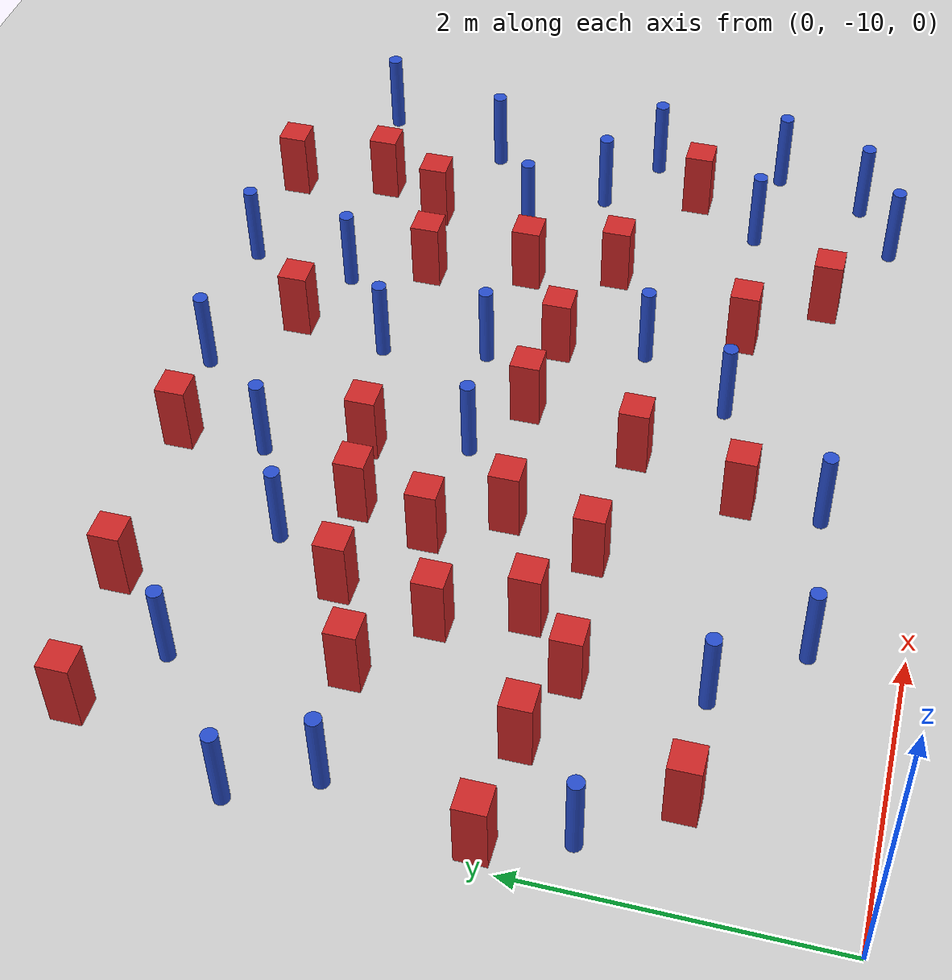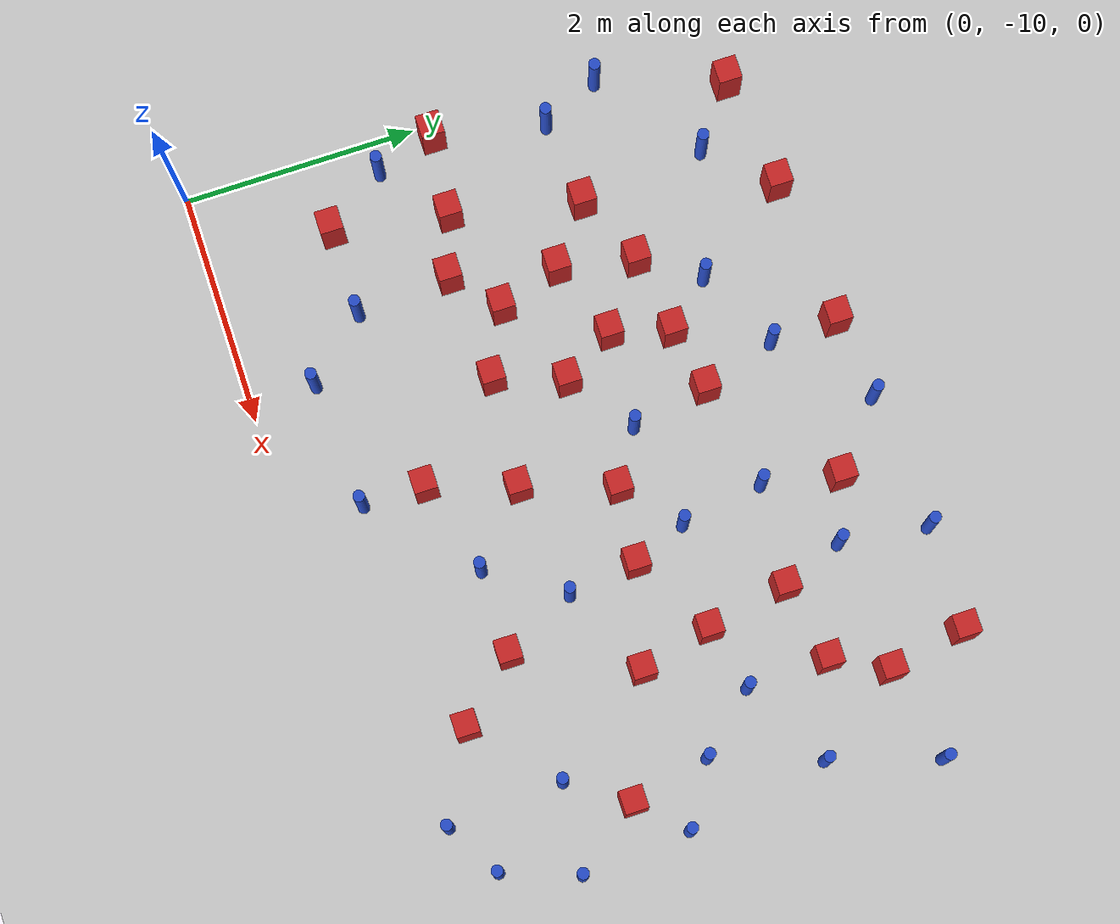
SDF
<sdf version="1.6">
 <world name="default">
  <model name="ground_plane">
   <static>1</static>
   <link name="link">
    <collision name="collision">
     <geometry><plane><normal>0 0 1</normal><size>100 100</size></plane></geometry>
     <surface><friction><ode><mu>100</mu><mu2>50</mu2></ode></friction></surface>
    </collision>
    <visual name="visual">
     <cast_shadows>0</cast_shadows>
     <geometry><plane><normal>0 0 1</normal><size>100 100</size></plane></geometry>
     <material>
      <ambient>1.0 1.0 1.0 1.0</ambient>
      <diffuse>0.8 0.8 0.8 1.0</diffuse>
      <specular>0.01 0.01 0.01 1.000000</specular>
     </material>
    </visual>
   </link>
  </model>
  <model name="pole_obstacle2">
   <static>true</static>
   <pose>1.8859989419 -9.4302232416 2.88873142074e-08 -9.90536690474e-09 4.60219948974e-07 -1.2096599497e-07</pose>
   <link name="link">
    <pose>0 0 0.3 0 -0 0</pose>
    <inertial>
     <mass>1</mass>
     <inertia><ixx>0.145833</ixx><ixy>0</ixy><ixz>0</ixz><iyy>0.145833</iyy><iyz>0</iyz><izz>0.125</izz></inertia>
    </inertial>
    <collision name="collision">
     <geometry><cylinder><radius>0.05</radius><length>.6</length></cylinder></geometry>
    </collision>
    <visual name="visual">
     <geometry><cylinder><radius>0.05</radius><length>.6</length></cylinder></geometry>
     <material>
      <script><name>Gazebo/Blue</name><uri>file://media/materials/scripts/gazebo.material</uri></script>
     </material>
    </visual>
   </link>
  </model>
  <model name="square_post_obstacle2">
   <static>true</static>
   <pose>0.835768978414 -7.92882272635 8.22691968438e-08 7.2212513382e-06 -7.54495500217e-07 2.29674213826e-05</pose>
   <link name="link">
    <pose>0 0 0.25 0 -0 0</pose>
    <inertial>
     <mass>100</mass>
     <inertia>
      <ixx>0.166667</ixx>
      <ixy>0</ixy>
      <ixz>0</ixz>
      <iyy>0.166667</iyy>
      <iyz>0</iyz>
      <izz>0.166667</izz>
     </inertia>
    </inertial>
    <collision name="collision"><geometry><box><size>.2 .2 .5</size></box></geometry></collision>
    <visual name="visual">
     <geometry><box><size>.2 .2 .5</size></box></geometry>
     <material>
      <script><name>Gazebo/Red</name><uri>file://media/materials/scripts/gazebo.material</uri></script>
     </material>
    </visual>
   </link>
  </model>
  <model name="pole_obstacle9">
   <static>true</static>
   <pose>4.58769082749 -4.96081243635 2.88873142074e-08 -9.90536690842e-09 4.60219948965e-07 -1.20965994976e-07</pose>
   <link name="link">
    <pose>0 0 0.3 0 -0 0</pose>
    <inertial>
     <mass>1</mass>
     <inertia><ixx>0.145833</ixx><ixy>0</ixy><ixz>0</ixz><iyy>0.145833</iyy><iyz>0</iyz><izz>0.125</izz></inertia>
    </inertial>
    <collision name="collision">
     <geometry><cylinder><radius>0.05</radius><length>.6</length></cylinder></geometry>
    </collision>
    <visual name="visual">
     <geometry><cylinder><radius>0.05</radius><length>.6</length></cylinder></geometry>
     <material>
      <script><name>Gazebo/Blue</name><uri>file://media/materials/scripts/gazebo.material</uri></script>
     </material>
    </visual>
   </link>
  </model>
  <model name="square_post_obstacle13">
   <static>true</static>
   <pose>0.13644949585 -7.86097893207 8.22691968438e-08 7.2212513382e-06 -7.54495500217e-07 2.29674213826e-05</pose>
   <link name="link">
    <pose>0 0 0.25 0 -0 0</pose>
    <inertial>
     <mass>100</mass>
     <inertia>
      <ixx>0.166667</ixx>
      <ixy>0</ixy>
      <ixz>0</ixz>
      <iyy>0.166667</iyy>
      <iyz>0</iyz>
      <izz>0.166667</izz>
     </inertia>
    </inertial>
    <collision name="collision"><geometry><box><size>.2 .2 .5</size></box></geometry></collision>
    <visual name="visual">
     <geometry><box><size>.2 .2 .5</size></box></geometry>
     <material>
      <script><name>Gazebo/Red</name><uri>file://media/materials/scripts/gazebo.material</uri></script>
     </material>
    </visual>
   </link>
  </model>
  <model name="pole_obstacle22">
   <static>true</static>
   <pose>6.42286496525 -8.55968681063 2.88873142074e-08 -9.9053668967e-09 4.60219948993e-07 -1.20965994957e-07</pose>
   <link name="link">
    <pose>0 0 0.3 0 -0 0</pose>
    <inertial>
     <mass>1</mass>
     <inertia><ixx>0.145833</ixx><ixy>0</ixy><ixz>0</ixz><iyy>0.145833</iyy><iyz>0</iyz><izz>0.125</izz></inertia>
    </inertial>
    <collision name="collision">
     <geometry><cylinder><radius>0.05</radius><length>.6</length></cylinder></geometry>
    </collision>
    <visual name="visual">
     <geometry><cylinder><radius>0.05</radius><length>.6</length></cylinder></geometry>
     <material>
      <script><name>Gazebo/Blue</name><uri>file://media/materials/scripts/gazebo.material</uri></script>
     </material>
    </visual>
   </link>
  </model>
  <model name="square_post_obstacle18">
   <static>true</static>
   <pose>2.69418516089 -5.13461668577 8.22691968438e-08 7.2212513382e-06 -7.54495500217e-07 2.29674213826e-05</pose>
   <link name="link">
    <pose>0 0 0.25 0 -0 0</pose>
    <inertial>
     <mass>100</mass>
     <inertia>
      <ixx>0.166667</ixx>
      <ixy>0</ixy>
      <ixz>0</ixz>
      <iyy>0.166667</iyy>
      <iyz>0</iyz>
      <izz>0.166667</izz>
     </inertia>
    </inertial>
    <collision name="collision"><geometry><box><size>.2 .2 .5</size></box></geometry></collision>
    <visual name="visual">
     <geometry><box><size>.2 .2 .5</size></box></geometry>
     <material>
      <script><name>Gazebo/Red</name><uri>file://media/materials/scripts/gazebo.material</uri></script>
     </material>
    </visual>
   </link>
  </model>
  <model name="pole_obstacle32">
   <static>true</static>
   <pose>1.41220477275 -8.90827783609 2.88873142074e-08 -9.90536690474e-09 4.60219948974e-07 -1.2096599497e-07</pose>
   <link name="link">
    <pose>0 0 0.3 0 -0 0</pose>
    <inertial>
     <mass>1</mass>
     <inertia><ixx>0.145833</ixx><ixy>0</ixy><ixz>0</ixz><iyy>0.145833</iyy><iyz>0</iyz><izz>0.125</izz></inertia>
    </inertial>
    <collision name="collision">
     <geometry><cylinder><radius>0.05</radius><length>.6</length></cylinder></geometry>
    </collision>
    <visual name="visual">
     <geometry><cylinder><radius>0.05</radius><length>.6</length></cylinder></geometry>
     <material>
      <script><name>Gazebo/Blue</name><uri>file://media/materials/scripts/gazebo.material</uri></script>
     </material>
    </visual>
   </link>
  </model>
  <model name="pole_obstacle34">
   <static>true</static>
   <pose>3.82896384521 -6.16896124586 2.88873142074e-08 -9.90536689859e-09 4.60219948989e-07 -1.20965994961e-07</pose>
   <link name="link">
    <pose>0 0 0.3 0 -0 0</pose>
    <inertial>
     <mass>1</mass>
     <inertia><ixx>0.145833</ixx><ixy>0</ixy><ixz>0</ixz><iyy>0.145833</iyy><iyz>0</iyz><izz>0.125</izz></inertia>
    </inertial>
    <collision name="collision">
     <geometry><cylinder><radius>0.05</radius><length>.6</length></cylinder></geometry>
    </collision>
    <visual name="visual">
     <geometry><cylinder><radius>0.05</radius><length>.6</length></cylinder></geometry>
     <material>
      <script><name>Gazebo/Blue</name><uri>file://media/materials/scripts/gazebo.material</uri></script>
     </material>
    </visual>
   </link>
  </model>
  <model name="square_post_obstacle30">
   <static>true</static>
   <pose>4.9848626262 -7.58560428557 8.22691968438e-08 7.22125133819e-06 -7.54495500217e-07 2.29674213826e-05</pose>
   <link name="link">
    <pose>0 0 0.25 0 -0 0</pose>
    <inertial>
     <mass>100</mass>
     <inertia>
      <ixx>0.166667</ixx>
      <ixy>0</ixy>
      <ixz>0</ixz>
      <iyy>0.166667</iyy>
      <iyz>0</iyz>
      <izz>0.166667</izz>
     </inertia>
    </inertial>
    <collision name="collision"><geometry><box><size>.2 .2 .5</size></box></geometry></collision>
    <visual name="visual">
     <geometry><box><size>.2 .2 .5</size></box></geometry>
     <material>
      <script><name>Gazebo/Red</name><uri>file://media/materials/scripts/gazebo.material</uri></script>
     </material>
    </visual>
   </link>
  </model>
  <model name="pole_obstacle46">
   <static>true</static>
   <pose>2.01112442423 -6.05994592885 2.88873142074e-08 -9.90536689932e-09 4.60219948987e-07 -1.20965994962e-07</pose>
   <link name="link">
    <pose>0 0 0.3 0 -0 0</pose>
    <inertial>
     <mass>1</mass>
     <inertia><ixx>0.145833</ixx><ixy>0</ixy><ixz>0</ixz><iyy>0.145833</iyy><iyz>0</iyz><izz>0.125</izz></inertia>
    </inertial>
    <collision name="collision">
     <geometry><cylinder><radius>0.05</radius><length>.6</length></cylinder></geometry>
    </collision>
    <visual name="visual">
     <geometry><cylinder><radius>0.05</radius><length>.6</length></cylinder></geometry>
     <material>
      <script><name>Gazebo/Blue</name><uri>file://media/materials/scripts/gazebo.material</uri></script>
     </material>
    </visual>
   </link>
  </model>
  <model name="pole_obstacle47">
   <static>true</static>
   <pose>5.65689835714 -8.48321922758 2.88873142074e-08 -9.9053668967e-09 4.60219948993e-07 -1.20965994957e-07</pose>
   <link name="link">
    <pose>0 0 0.3 0 -0 0</pose>
    <inertial>
     <mass>1</mass>
     <inertia><ixx>0.145833</ixx><ixy>0</ixy><ixz>0</ixz><iyy>0.145833</iyy><iyz>0</iyz><izz>0.125</izz></inertia>
    </inertial>
    <collision name="collision">
     <geometry><cylinder><radius>0.05</radius><length>.6</length></cylinder></geometry>
    </collision>
    <visual name="visual">
     <geometry><cylinder><radius>0.05</radius><length>.6</length></cylinder></geometry>
     <material>
      <script><name>Gazebo/Blue</name><uri>file://media/materials/scripts/gazebo.material</uri></script>
     </material>
    </visual>
   </link>
  </model>
  <model name="pole_obstacle51">
   <static>true</static>
   <pose>2.97952975803 -9.35421330922 2.88873142074e-08 -9.90536692318e-09 4.6021994893e-07 -1.20965994988e-07</pose>
   <link name="link">
    <pose>0 0 0.3 0 -0 0</pose>
    <inertial>
     <mass>1</mass>
     <inertia><ixx>0.145833</ixx><ixy>0</ixy><ixz>0</ixz><iyy>0.145833</iyy><iyz>0</iyz><izz>0.125</izz></inertia>
    </inertial>
    <collision name="collision">
     <geometry><cylinder><radius>0.05</radius><length>.6</length></cylinder></geometry>
    </collision>
    <visual name="visual">
     <geometry><cylinder><radius>0.05</radius><length>.6</length></cylinder></geometry>
     <material>
      <script><name>Gazebo/Blue</name><uri>file://media/materials/scripts/gazebo.material</uri></script>
     </material>
    </visual>
   </link>
  </model>
  <model name="square_post_obstacle41">
   <static>true</static>
   <pose>4.69318071268 -6.25498221422 8.22691968438e-08 7.2212513382e-06 -7.54495500217e-07 2.29674213826e-05</pose>
   <link name="link">
    <pose>0 0 0.25 0 -0 0</pose>
    <inertial>
     <mass>100</mass>
     <inertia>
      <ixx>0.166667</ixx>
      <ixy>0</ixy>
      <ixz>0</ixz>
      <iyy>0.166667</iyy>
      <iyz>0</iyz>
      <izz>0.166667</izz>
     </inertia>
    </inertial>
    <collision name="collision"><geometry><box><size>.2 .2 .5</size></box></geometry></collision>
    <visual name="visual">
     <geometry><box><size>.2 .2 .5</size></box></geometry>
     <material>
      <script><name>Gazebo/Red</name><uri>file://media/materials/scripts/gazebo.material</uri></script>
     </material>
    </visual>
   </link>
  </model>
  <model name="square_post_obstacle47">
   <static>true</static>
   <pose>5.98729697557 -7.99261008761 8.22691968438e-08 7.2212513382e-06 -7.54495500217e-07 2.29674213826e-05</pose>
   <link name="link">
    <pose>0 0 0.25 0 -0 0</pose>
    <inertial>
     <mass>100</mass>
     <inertia>
      <ixx>0.166667</ixx>
      <ixy>0</ixy>
      <ixz>0</ixz>
      <iyy>0.166667</iyy>
      <iyz>0</iyz>
      <izz>0.166667</izz>
     </inertia>
    </inertial>
    <collision name="collision"><geometry><box><size>.2 .2 .5</size></box></geometry></collision>
    <visual name="visual">
     <geometry><box><size>.2 .2 .5</size></box></geometry>
     <material>
      <script><name>Gazebo/Red</name><uri>file://media/materials/scripts/gazebo.material</uri></script>
     </material>
    </visual>
   </link>
  </model>
  <model name="square_post_obstacle48">
   <static>true</static>
   <pose>2.29051355071 -8.01106818688 8.22691968438e-08 7.2212513382e-06 -7.54495500217e-07 2.29674213826e-05</pose>
   <link name="link">
    <pose>0 0 0.25 0 -0 0</pose>
    <inertial>
     <mass>100</mass>
     <inertia>
      <ixx>0.166667</ixx>
      <ixy>0</ixy>
      <ixz>0</ixz>
      <iyy>0.166667</iyy>
      <iyz>0</iyz>
      <izz>0.166667</izz>
     </inertia>
    </inertial>
    <collision name="collision"><geometry><box><size>.2 .2 .5</size></box></geometry></collision>
    <visual name="visual">
     <geometry><box><size>.2 .2 .5</size></box></geometry>
     <material>
      <script><name>Gazebo/Red</name><uri>file://media/materials/scripts/gazebo.material</uri></script>
     </material>
    </visual>
   </link>
  </model>
  <model name="square_post_obstacle49">
   <static>true</static>
   <pose>2.49766347501 -7.42223464471 8.22691968438e-08 7.22125133819e-06 -7.54495500217e-07 2.29674213826e-05</pose>
   <link name="link">
    <pose>0 0 0.25 0 -0 0</pose>
    <inertial>
     <mass>100</mass>
     <inertia>
      <ixx>0.166667</ixx>
      <ixy>0</ixy>
      <ixz>0</ixz>
      <iyy>0.166667</iyy>
      <iyz>0</iyz>
      <izz>0.166667</izz>
     </inertia>
    </inertial>
    <collision name="collision"><geometry><box><size>.2 .2 .5</size></box></geometry></collision>
    <visual name="visual">
     <geometry><box><size>.2 .2 .5</size></box></geometry>
     <material>
      <script><name>Gazebo/Red</name><uri>file://media/materials/scripts/gazebo.material</uri></script>
     </material>
    </visual>
   </link>
  </model>
  <model name="square_post_obstacle53">
   <static>true</static>
   <pose>5.60445173932 -5.65862846128 8.22691968438e-08 7.2212513382e-06 -7.54495500217e-07 2.29674213826e-05</pose>
   <link name="link">
    <pose>0 0 0.25 0 -0 0</pose>
    <inertial>
     <mass>100</mass>
     <inertia>
      <ixx>0.166667</ixx>
      <ixy>0</ixy>
      <ixz>0</ixz>
      <iyy>0.166667</iyy>
      <iyz>0</iyz>
      <izz>0.166667</izz>
     </inertia>
    </inertial>
    <collision name="collision"><geometry><box><size>.2 .2 .5</size></box></geometry></collision>
    <visual name="visual">
     <geometry><box><size>.2 .2 .5</size></box></geometry>
     <material>
      <script><name>Gazebo/Red</name><uri>file://media/materials/scripts/gazebo.material</uri></script>
     </material>
    </visual>
   </link>
  </model>
  <model name="square_post_obstacle54">
   <static>true</static>
   <pose>3.95697794749 -5.52259755538 8.22691968438e-08 7.2212513382e-06 -7.54495500217e-07 2.29674213826e-05</pose>
   <link name="link">
    <pose>0 0 0.25 0 -0 0</pose>
    <inertial>
     <mass>100</mass>
     <inertia>
      <ixx>0.166667</ixx>
      <ixy>0</ixy>
      <ixz>0</ixz>
      <iyy>0.166667</iyy>
      <iyz>0</iyz>
      <izz>0.166667</izz>
     </inertia>
    </inertial>
    <collision name="collision"><geometry><box><size>.2 .2 .5</size></box></geometry></collision>
    <visual name="visual">
     <geometry><box><size>.2 .2 .5</size></box></geometry>
     <material>
      <script><name>Gazebo/Red</name><uri>file://media/materials/scripts/gazebo.material</uri></script>
     </material>
    </visual>
   </link>
  </model>
  <model name="square_post_obstacle60">
   <static>true</static>
   <pose>1.73752317292 -7.75139012081 8.22691968438e-08 7.2212513382e-06 -7.54495500217e-07 2.29674213826e-05</pose>
   <link name="link">
    <pose>0 0 0.25 0 -0 0</pose>
    <inertial>
     <mass>100</mass>
     <inertia>
      <ixx>0.166667</ixx>
      <ixy>0</ixy>
      <ixz>0</ixz>
      <iyy>0.166667</iyy>
      <iyz>0</iyz>
      <izz>0.166667</izz>
     </inertia>
    </inertial>
    <collision name="collision"><geometry><box><size>.2 .2 .5</size></box></geometry></collision>
    <visual name="visual">
     <geometry><box><size>.2 .2 .5</size></box></geometry>
     <material>
      <script><name>Gazebo/Red</name><uri>file://media/materials/scripts/gazebo.material</uri></script>
     </material>
    </visual>
   </link>
  </model>
  <model name="square_post_obstacle68">
   <static>true</static>
   <pose>0.451671294636 -5.34658785301 8.22691968438e-08 7.2212513382e-06 -7.54495500217e-07 2.29674213826e-05</pose>
   <link name="link">
    <pose>0 0 0.25 0 -0 0</pose>
    <inertial>
     <mass>100</mass>
     <inertia>
      <ixx>0.166667</ixx>
      <ixy>0</ixy>
      <ixz>0</ixz>
      <iyy>0.166667</iyy>
      <iyz>0</iyz>
      <izz>0.166667</izz>
     </inertia>
    </inertial>
    <collision name="collision"><geometry><box><size>.2 .2 .5</size></box></geometry></collision>
    <visual name="visual">
     <geometry><box><size>.2 .2 .5</size></box></geometry>
     <material>
      <script><name>Gazebo/Red</name><uri>file://media/materials/scripts/gazebo.material</uri></script>
     </material>
    </visual>
   </link>
  </model>
  <model name="square_post_obstacle80">
   <static>true</static>
   <pose>1.43315822951 -5.22677579761 8.22691968438e-08 7.2212513382e-06 -7.54495500217e-07 2.29674213826e-05</pose>
   <link name="link">
    <pose>0 0 0.25 0 -0 0</pose>
    <inertial>
     <mass>100</mass>
     <inertia>
      <ixx>0.166667</ixx>
      <ixy>0</ixy>
      <ixz>0</ixz>
      <iyy>0.166667</iyy>
      <iyz>0</iyz>
      <izz>0.166667</izz>
     </inertia>
    </inertial>
    <collision name="collision"><geometry><box><size>.2 .2 .5</size></box></geometry></collision>
    <visual name="visual">
     <geometry><box><size>.2 .2 .5</size></box></geometry>
     <material>
      <script><name>Gazebo/Red</name><uri>file://media/materials/scripts/gazebo.material</uri></script>
     </material>
    </visual>
   </link>
  </model>
  <model name="square_post_obstacle86">
   <static>true</static>
   <pose>1.07769058998 -6.83067623101 8.22691968438e-08 7.22125133819e-06 -7.54495500217e-07 2.29674213826e-05</pose>
   <link name="link">
    <pose>0 0 0.25 0 -0 0</pose>
    <inertial>
     <mass>100</mass>
     <inertia>
      <ixx>0.166667</ixx>
      <ixy>0</ixy>
      <ixz>0</ixz>
      <iyy>0.166667</iyy>
      <iyz>0</iyz>
      <izz>0.166667</izz>
     </inertia>
    </inertial>
    <collision name="collision"><geometry><box><size>.2 .2 .5</size></box></geometry></collision>
    <visual name="visual">
     <geometry><box><size>.2 .2 .5</size></box></geometry>
     <material>
      <script><name>Gazebo/Red</name><uri>file://media/materials/scripts/gazebo.material</uri></script>
     </material>
    </visual>
   </link>
  </model>
  <model name="pole_obstacle95">
   <static>true</static>
   <pose>0.95234427532 -5.73133498466 2.88873142074e-08 -9.90536689421e-09 4.60219948999e-07 -1.20965994953e-07</pose>
   <link name="link">
    <pose>0 0 0.3 0 -0 0</pose>
    <inertial>
     <mass>1</mass>
     <inertia><ixx>0.145833</ixx><ixy>0</ixy><ixz>0</ixz><iyy>0.145833</iyy><iyz>0</iyz><izz>0.125</izz></inertia>
    </inertial>
    <collision name="collision">
     <geometry><cylinder><radius>0.05</radius><length>.6</length></cylinder></geometry>
    </collision>
    <visual name="visual">
     <geometry><cylinder><radius>0.05</radius><length>.6</length></cylinder></geometry>
     <material>
      <script><name>Gazebo/Blue</name><uri>file://media/materials/scripts/gazebo.material</uri></script>
     </material>
    </visual>
   </link>
  </model>
  <model name="square_post_obstacle91">
   <static>true</static>
   <pose>2.22246800475 -6.96604614455 8.22691968438e-08 7.2212513382e-06 -7.54495500217e-07 2.29674213826e-05</pose>
   <link name="link">
    <pose>0 0 0.25 0 -0 0</pose>
    <inertial>
     <mass>100</mass>
     <inertia>
      <ixx>0.166667</ixx>
      <ixy>0</ixy>
      <ixz>0</ixz>
      <iyy>0.166667</iyy>
      <iyz>0</iyz>
      <izz>0.166667</izz>
     </inertia>
    </inertial>
    <collision name="collision"><geometry><box><size>.2 .2 .5</size></box></geometry></collision>
    <visual name="visual">
     <geometry><box><size>.2 .2 .5</size></box></geometry>
     <material>
      <script><name>Gazebo/Red</name><uri>file://media/materials/scripts/gazebo.material</uri></script>
     </material>
    </visual>
   </link>
  </model>
  <model name="square_post_obstacle94">
   <static>true</static>
   <pose>3.23444855849 -8.08561585137 8.22691968438e-08 7.2212513382e-06 -7.54495500217e-07 2.29674213826e-05</pose>
   <link name="link">
    <pose>0 0 0.25 0 -0 0</pose>
    <inertial>
     <mass>100</mass>
     <inertia>
      <ixx>0.166667</ixx>
      <ixy>0</ixy>
      <ixz>0</ixz>
      <iyy>0.166667</iyy>
      <iyz>0</iyz>
      <izz>0.166667</izz>
     </inertia>
    </inertial>
    <collision name="collision"><geometry><box><size>.2 .2 .5</size></box></geometry></collision>
    <visual name="visual">
     <geometry><box><size>.2 .2 .5</size></box></geometry>
     <material>
      <script><name>Gazebo/Red</name><uri>file://media/materials/scripts/gazebo.material</uri></script>
     </material>
    </visual>
   </link>
  </model>
  <model name="square_post_obstacle96">
   <static>true</static>
   <pose>4.99157654891 -9.09134692504 8.22691968438e-08 7.22125133819e-06 -7.54495500217e-07 2.29674213826e-05</pose>
   <link name="link">
    <pose>0 0 0.25 0 -0 0</pose>
    <inertial>
     <mass>100</mass>
     <inertia>
      <ixx>0.166667</ixx>
      <ixy>0</ixy>
      <ixz>0</ixz>
      <iyy>0.166667</iyy>
      <iyz>0</iyz>
      <izz>0.166667</izz>
     </inertia>
    </inertial>
    <collision name="collision"><geometry><box><size>.2 .2 .5</size></box></geometry></collision>
    <visual name="visual">
     <geometry><box><size>.2 .2 .5</size></box></geometry>
     <material>
      <script><name>Gazebo/Red</name><uri>file://media/materials/scripts/gazebo.material</uri></script>
     </material>
    </visual>
   </link>
  </model>
  <model name="pole_obstacle103">
   <static>true</static>
   <pose>3.41333436719 -5.04303999115 2.88873142074e-08 -9.90536689859e-09 4.60219948989e-07 -1.20965994961e-07</pose>
   <link name="link">
    <pose>0 0 0.3 0 -0 0</pose>
    <inertial>
     <mass>1</mass>
     <inertia><ixx>0.145833</ixx><ixy>0</ixy><ixz>0</ixz><iyy>0.145833</iyy><iyz>0</iyz><izz>0.125</izz></inertia>
    </inertial>
    <collision name="collision">
     <geometry><cylinder><radius>0.05</radius><length>.6</length></cylinder></geometry>
    </collision>
    <visual name="visual">
     <geometry><cylinder><radius>0.05</radius><length>.6</length></cylinder></geometry>
     <material>
      <script><name>Gazebo/Blue</name><uri>file://media/materials/scripts/gazebo.material</uri></script>
     </material>
    </visual>
   </link>
  </model>
  <model name="square_post_obstacle101">
   <static>true</static>
   <pose>4.13178375362 -7.35766125523 8.22691968438e-08 7.22125133819e-06 -7.54495500217e-07 2.29674213826e-05</pose>
   <link name="link">
    <pose>0 0 0.25 0 -0 0</pose>
    <inertial>
     <mass>100</mass>
     <inertia>
      <ixx>0.166667</ixx>
      <ixy>0</ixy>
      <ixz>0</ixz>
      <iyy>0.166667</iyy>
      <iyz>0</iyz>
      <izz>0.166667</izz>
     </inertia>
    </inertial>
    <collision name="collision"><geometry><box><size>.2 .2 .5</size></box></geometry></collision>
    <visual name="visual">
     <geometry><box><size>.2 .2 .5</size></box></geometry>
     <material>
      <script><name>Gazebo/Red</name><uri>file://media/materials/scripts/gazebo.material</uri></script>
     </material>
    </visual>
   </link>
  </model>
  <model name="pole_obstacle114">
   <static>true</static>
   <pose>5.8348033945 -7.30347017115 2.88873142074e-08 -9.90536690842e-09 4.60219948965e-07 -1.20965994976e-07</pose>
   <link name="link">
    <pose>0 0 0.3 0 -0 0</pose>
    <inertial>
     <mass>1</mass>
     <inertia><ixx>0.145833</ixx><ixy>0</ixy><ixz>0</ixz><iyy>0.145833</iyy><iyz>0</iyz><izz>0.125</izz></inertia>
    </inertial>
    <collision name="collision">
     <geometry><cylinder><radius>0.05</radius><length>.6</length></cylinder></geometry>
    </collision>
    <visual name="visual">
     <geometry><cylinder><radius>0.05</radius><length>.6</length></cylinder></geometry>
     <material>
      <script><name>Gazebo/Blue</name><uri>file://media/materials/scripts/gazebo.material</uri></script>
     </material>
    </visual>
   </link>
  </model>
  <model name="pole_obstacle116">
   <static>true</static>
   <pose>0.334454652385 -6.90855166016 2.88873142074e-08 -9.90536689683e-09 4.60219948993e-07 -1.20965994957e-07</pose>
   <link name="link">
    <pose>0 0 0.3 0 -0 0</pose>
    <inertial>
     <mass>1</mass>
     <inertia><ixx>0.145833</ixx><ixy>0</ixy><ixz>0</ixz><iyy>0.145833</iyy><iyz>0</iyz><izz>0.125</izz></inertia>
    </inertial>
    <collision name="collision">
     <geometry><cylinder><radius>0.05</radius><length>.6</length></cylinder></geometry>
    </collision>
    <visual name="visual">
     <geometry><cylinder><radius>0.05</radius><length>.6</length></cylinder></geometry>
     <material>
      <script><name>Gazebo/Blue</name><uri>file://media/materials/scripts/gazebo.material</uri></script>
     </material>
    </visual>
   </link>
  </model>
  <model name="pole_obstacle119">
   <static>true</static>
   <pose>6.15157450512 -6.39888402472 2.88873142074e-08 -9.90536690842e-09 4.60219948965e-07 -1.20965994976e-07</pose>
   <link name="link">
    <pose>0 0 0.3 0 -0 0</pose>
    <inertial>
     <mass>1</mass>
     <inertia><ixx>0.145833</ixx><ixy>0</ixy><ixz>0</ixz><iyy>0.145833</iyy><iyz>0</iyz><izz>0.125</izz></inertia>
    </inertial>
    <collision name="collision">
     <geometry><cylinder><radius>0.05</radius><length>.6</length></cylinder></geometry>
    </collision>
    <visual name="visual">
     <geometry><cylinder><radius>0.05</radius><length>.6</length></cylinder></geometry>
     <material>
      <script><name>Gazebo/Blue</name><uri>file://media/materials/scripts/gazebo.material</uri></script>
     </material>
    </visual>
   </link>
  </model>
  <model name="pole_obstacle120">
   <static>true</static>
   <pose>0.0958705696128 -6.40343346842 2.88873142074e-08 -9.90536689742e-09 4.60219948992e-07 -1.2096599496e-07</pose>
   <link name="link">
    <pose>0 0 0.3 0 -0 0</pose>
    <inertial>
     <mass>1</mass>
     <inertia><ixx>0.145833</ixx><ixy>0</ixy><ixz>0</ixz><iyy>0.145833</iyy><iyz>0</iyz><izz>0.125</izz></inertia>
    </inertial>
    <collision name="collision">
     <geometry><cylinder><radius>0.05</radius><length>.6</length></cylinder></geometry>
    </collision>
    <visual name="visual">
     <geometry><cylinder><radius>0.05</radius><length>.6</length></cylinder></geometry>
     <material>
      <script><name>Gazebo/Blue</name><uri>file://media/materials/scripts/gazebo.material</uri></script>
     </material>
    </visual>
   </link>
  </model>
  <model name="pole_obstacle121">
   <static>true</static>
   <pose>2.70878398709 -5.700356807 2.88873142074e-08 -9.90536689859e-09 4.60219948989e-07 -1.20965994961e-07</pose>
   <link name="link">
    <pose>0 0 0.3 0 -0 0</pose>
    <inertial>
     <mass>1</mass>
     <inertia><ixx>0.145833</ixx><ixy>0</ixy><ixz>0</ixz><iyy>0.145833</iyy><iyz>0</iyz><izz>0.125</izz></inertia>
    </inertial>
    <collision name="collision">
     <geometry><cylinder><radius>0.05</radius><length>.6</length></cylinder></geometry>
    </collision>
    <visual name="visual">
     <geometry><cylinder><radius>0.05</radius><length>.6</length></cylinder></geometry>
     <material>
      <script><name>Gazebo/Blue</name><uri>file://media/materials/scripts/gazebo.material</uri></script>
     </material>
    </visual>
   </link>
  </model>
  <model name="square_post_obstacle128">
   <static>true</static>
   <pose>1.35397711601 -8.09190194919 8.22691968438e-08 7.22125133819e-06 -7.54495500217e-07 2.29674213826e-05</pose>
   <link name="link">
    <pose>0 0 0.25 0 -0 0</pose>
    <inertial>
     <mass>100</mass>
     <inertia>
      <ixx>0.166667</ixx>
      <ixy>0</ixy>
      <ixz>0</ixz>
      <iyy>0.166667</iyy>
      <iyz>0</iyz>
      <izz>0.166667</izz>
     </inertia>
    </inertial>
    <collision name="collision"><geometry><box><size>.2 .2 .5</size></box></geometry></collision>
    <visual name="visual">
     <geometry><box><size>.2 .2 .5</size></box></geometry>
     <material>
      <script><name>Gazebo/Red</name><uri>file://media/materials/scripts/gazebo.material</uri></script>
     </material>
    </visual>
   </link>
  </model>
  <model name="pole_obstacle146">
   <static>true</static>
   <pose>3.04067337786 -7.01361680601 2.88873142074e-08 -9.90536689859e-09 4.60219948989e-07 -1.20965994961e-07</pose>
   <link name="link">
    <pose>0 0 0.3 0 -0 0</pose>
    <inertial>
     <mass>1</mass>
     <inertia><ixx>0.145833</ixx><ixy>0</ixy><ixz>0</ixz><iyy>0.145833</iyy><iyz>0</iyz><izz>0.125</izz></inertia>
    </inertial>
    <collision name="collision">
     <geometry><cylinder><radius>0.05</radius><length>.6</length></cylinder></geometry>
    </collision>
    <visual name="visual">
     <geometry><cylinder><radius>0.05</radius><length>.6</length></cylinder></geometry>
     <material>
      <script><name>Gazebo/Blue</name><uri>file://media/materials/scripts/gazebo.material</uri></script>
     </material>
    </visual>
   </link>
  </model>
  <model name="pole_obstacle148">
   <static>true</static>
   <pose>6.43242458367 -5.47777647388 2.88873142074e-08 -9.90536690842e-09 4.60219948965e-07 -1.20965994976e-07</pose>
   <link name="link">
    <pose>0 0 0.3 0 -0 0</pose>
    <inertial>
     <mass>1</mass>
     <inertia><ixx>0.145833</ixx><ixy>0</ixy><ixz>0</ixz><iyy>0.145833</iyy><iyz>0</iyz><izz>0.125</izz></inertia>
    </inertial>
    <collision name="collision">
     <geometry><cylinder><radius>0.05</radius><length>.6</length></cylinder></geometry>
    </collision>
    <visual name="visual">
     <geometry><cylinder><radius>0.05</radius><length>.6</length></cylinder></geometry>
     <material>
      <script><name>Gazebo/Blue</name><uri>file://media/materials/scripts/gazebo.material</uri></script>
     </material>
    </visual>
   </link>
  </model>
  <model name="square_post_obstacle142">
   <static>true</static>
   <pose>2.98983944252 -8.81898818358 8.22691968438e-08 7.22125133819e-06 -7.54495500217e-07 2.29674213826e-05</pose>
   <link name="link">
    <pose>0 0 0.25 0 -0 0</pose>
    <inertial>
     <mass>100</mass>
     <inertia>
      <ixx>0.166667</ixx>
      <ixy>0</ixy>
      <ixz>0</ixz>
      <iyy>0.166667</iyy>
      <iyz>0</iyz>
      <izz>0.166667</izz>
     </inertia>
    </inertial>
    <collision name="collision"><geometry><box><size>.2 .2 .5</size></box></geometry></collision>
    <visual name="visual">
     <geometry><box><size>.2 .2 .5</size></box></geometry>
     <material>
      <script><name>Gazebo/Red</name><uri>file://media/materials/scripts/gazebo.material</uri></script>
     </material>
    </visual>
   </link>
  </model>
  <model name="pole_obstacle152">
   <static>true</static>
   <pose>4.49245693471 -5.71729059216 2.88873142074e-08 -9.90536690842e-09 4.60219948965e-07 -1.20965994976e-07</pose>
   <link name="link">
    <pose>0 0 0.3 0 -0 0</pose>
    <inertial>
     <mass>1</mass>
     <inertia><ixx>0.145833</ixx><ixy>0</ixy><ixz>0</ixz><iyy>0.145833</iyy><iyz>0</iyz><izz>0.125</izz></inertia>
    </inertial>
    <collision name="collision">
     <geometry><cylinder><radius>0.05</radius><length>.6</length></cylinder></geometry>
    </collision>
    <visual name="visual">
     <geometry><cylinder><radius>0.05</radius><length>.6</length></cylinder></geometry>
     <material>
      <script><name>Gazebo/Blue</name><uri>file://media/materials/scripts/gazebo.material</uri></script>
     </material>
    </visual>
   </link>
  </model>
  <model name="square_post_obstacle150">
   <static>true</static>
   <pose>0.666853940541 -8.9080145905 8.22691968438e-08 7.22125133819e-06 -7.54495500217e-07 2.29674213826e-05</pose>
   <link name="link">
    <pose>0 0 0.25 0 -0 0</pose>
    <inertial>
     <mass>100</mass>
     <inertia>
      <ixx>0.166667</ixx>
      <ixy>0</ixy>
      <ixz>0</ixz>
      <iyy>0.166667</iyy>
      <iyz>0</iyz>
      <izz>0.166667</izz>
     </inertia>
    </inertial>
    <collision name="collision"><geometry><box><size>.2 .2 .5</size></box></geometry></collision>
    <visual name="visual">
     <geometry><box><size>.2 .2 .5</size></box></geometry>
     <material>
      <script><name>Gazebo/Red</name><uri>file://media/materials/scripts/gazebo.material</uri></script>
     </material>
    </visual>
   </link>
  </model>
  <model name="pole_obstacle161">
   <static>true</static>
   <pose>4.21671271978 -7.95567261143 2.88873142074e-08 -9.90536690264e-09 4.60219948979e-07 -1.20965994965e-07</pose>
   <link name="link">
    <pose>0 0 0.3 0 -0 0</pose>
    <inertial>
     <mass>1</mass>
     <inertia><ixx>0.145833</ixx><ixy>0</ixy><ixz>0</ixz><iyy>0.145833</iyy><iyz>0</iyz><izz>0.125</izz></inertia>
    </inertial>
    <collision name="collision">
     <geometry><cylinder><radius>0.05</radius><length>.6</length></cylinder></geometry>
    </collision>
    <visual name="visual">
     <geometry><cylinder><radius>0.05</radius><length>.6</length></cylinder></geometry>
     <material>
      <script><name>Gazebo/Blue</name><uri>file://media/materials/scripts/gazebo.material</uri></script>
     </material>
    </visual>
   </link>
  </model>
  <model name="pole_obstacle164">
   <static>true</static>
   <pose>3.94726783071 -6.88765625675 2.88873142074e-08 -9.90536689859e-09 4.60219948989e-07 -1.20965994961e-07</pose>
   <link name="link">
    <pose>0 0 0.3 0 -0 0</pose>
    <inertial>
     <mass>1</mass>
     <inertia><ixx>0.145833</ixx><ixy>0</ixy><ixz>0</ixz><iyy>0.145833</iyy><iyz>0</iyz><izz>0.125</izz></inertia>
    </inertial>
    <collision name="collision">
     <geometry><cylinder><radius>0.05</radius><length>.6</length></cylinder></geometry>
    </collision>
    <visual name="visual">
     <geometry><cylinder><radius>0.05</radius><length>.6</length></cylinder></geometry>
     <material>
      <script><name>Gazebo/Blue</name><uri>file://media/materials/scripts/gazebo.material</uri></script>
     </material>
    </visual>
   </link>
  </model>
  <model name="square_post_obstacle159">
   <static>true</static>
   <pose>3.49153956252 -7.29890074141 8.22691968438e-08 7.2212513382e-06 -7.54495500217e-07 2.29674213826e-05</pose>
   <link name="link">
    <pose>0 0 0.25 0 -0 0</pose>
    <inertial>
     <mass>100</mass>
     <inertia>
      <ixx>0.166667</ixx>
      <ixy>0</ixy>
      <ixz>0</ixz>
      <iyy>0.166667</iyy>
      <iyz>0</iyz>
      <izz>0.166667</izz>
     </inertia>
    </inertial>
    <collision name="collision"><geometry><box><size>.2 .2 .5</size></box></geometry></collision>
    <visual name="visual">
     <geometry><box><size>.2 .2 .5</size></box></geometry>
     <material>
      <script><name>Gazebo/Red</name><uri>file://media/materials/scripts/gazebo.material</uri></script>
     </material>
    </visual>
   </link>
  </model>
  <model name="pole_obstacle172">
   <static>true</static>
   <pose>5.7246939154 -9.47555046149 2.88873142074e-08 -9.9053668967e-09 4.60219948993e-07 -1.20965994957e-07</pose>
   <link name="link">
    <pose>0 0 0.3 0 -0 0</pose>
    <inertial>
     <mass>1</mass>
     <inertia><ixx>0.145833</ixx><ixy>0</ixy><ixz>0</ixz><iyy>0.145833</iyy><iyz>0</iyz><izz>0.125</izz></inertia>
    </inertial>
    <collision name="collision">
     <geometry><cylinder><radius>0.05</radius><length>.6</length></cylinder></geometry>
    </collision>
    <visual name="visual">
     <geometry><cylinder><radius>0.05</radius><length>.6</length></cylinder></geometry>
     <material>
      <script><name>Gazebo/Blue</name><uri>file://media/materials/scripts/gazebo.material</uri></script>
     </material>
    </visual>
   </link>
  </model>
  <model name="square_post_obstacle173">
   <static>true</static>
   <pose>5.36571550654 -6.11766177386 8.22691968438e-08 7.22125133819e-06 -7.54495500217e-07 2.29674213826e-05</pose>
   <link name="link">
    <pose>0 0 0.25 0 -0 0</pose>
    <inertial>
     <mass>100</mass>
     <inertia>
      <ixx>0.166667</ixx>
      <ixy>0</ixy>
      <ixz>0</ixz>
      <iyy>0.166667</iyy>
      <iyz>0</iyz>
      <izz>0.166667</izz>
     </inertia>
    </inertial>
    <collision name="collision"><geometry><box><size>.2 .2 .5</size></box></geometry></collision>
    <visual name="visual">
     <geometry><box><size>.2 .2 .5</size></box></geometry>
     <material>
      <script><name>Gazebo/Red</name><uri>file://media/materials/scripts/gazebo.material</uri></script>
     </material>
    </visual>
   </link>
  </model>
  <model name="pole_obstacle176">
   <static>true</static>
   <pose>0.294180432761 -8.37727304552 2.88873142074e-08 -9.90536691191e-09 4.60219948957e-07 -1.20965994982e-07</pose>
   <link name="link">
    <pose>0 0 0.3 0 -0 0</pose>
    <inertial>
     <mass>1</mass>
     <inertia><ixx>0.145833</ixx><ixy>0</ixy><ixz>0</ixz><iyy>0.145833</iyy><iyz>0</iyz><izz>0.125</izz></inertia>
    </inertial>
    <collision name="collision">
     <geometry><cylinder><radius>0.05</radius><length>.6</length></cylinder></geometry>
    </collision>
    <visual name="visual">
     <geometry><cylinder><radius>0.05</radius><length>.6</length></cylinder></geometry>
     <material>
      <script><name>Gazebo/Blue</name><uri>file://media/materials/scripts/gazebo.material</uri></script>
     </material>
    </visual>
   </link>
  </model>
  <model name="square_post_obstacle178">
   <static>true</static>
   <pose>1.558764269 -7.20822443062 8.22691968438e-08 7.2212513382e-06 -7.54495500217e-07 2.29674213826e-05</pose>
   <link name="link">
    <pose>0 0 0.25 0 -0 0</pose>
    <inertial>
     <mass>100</mass>
     <inertia>
      <ixx>0.166667</ixx>
      <ixy>0</ixy>
      <ixz>0</ixz>
      <iyy>0.166667</iyy>
      <iyz>0</iyz>
      <izz>0.166667</izz>
     </inertia>
    </inertial>
    <collision name="collision"><geometry><box><size>.2 .2 .5</size></box></geometry></collision>
    <visual name="visual">
     <geometry><box><size>.2 .2 .5</size></box></geometry>
     <material>
      <script><name>Gazebo/Red</name><uri>file://media/materials/scripts/gazebo.material</uri></script>
     </material>
    </visual>
   </link>
  </model>
  <model name="square_post_obstacle190">
   <static>true</static>
   <pose>1.69110227408 -6.55577958406 8.22691968438e-08 7.2212513382e-06 -7.54495500217e-07 2.29674213826e-05</pose>
   <link name="link">
    <pose>0 0 0.25 0 -0 0</pose>
    <inertial>
     <mass>100</mass>
     <inertia>
      <ixx>0.166667</ixx>
      <ixy>0</ixy>
      <ixz>0</ixz>
      <iyy>0.166667</iyy>
      <iyz>0</iyz>
      <izz>0.166667</izz>
     </inertia>
    </inertial>
    <collision name="collision"><geometry><box><size>.2 .2 .5</size></box></geometry></collision>
    <visual name="visual">
     <geometry><box><size>.2 .2 .5</size></box></geometry>
     <material>
      <script><name>Gazebo/Red</name><uri>file://media/materials/scripts/gazebo.material</uri></script>
     </material>
    </visual>
   </link>
  </model>
  <model name="square_post_obstacle193">
   <static>true</static>
   <pose>4.83110538567 -6.9626078005 8.22691968438e-08 7.2212513382e-06 -7.54495500217e-07 2.29674213826e-05</pose>
   <link name="link">
    <pose>0 0 0.25 0 -0 0</pose>
    <inertial>
     <mass>100</mass>
     <inertia>
      <ixx>0.166667</ixx>
      <ixy>0</ixy>
      <ixz>0</ixz>
      <iyy>0.166667</iyy>
      <iyz>0</iyz>
      <izz>0.166667</izz>
     </inertia>
    </inertial>
    <collision name="collision"><geometry><box><size>.2 .2 .5</size></box></geometry></collision>
    <visual name="visual">
     <geometry><box><size>.2 .2 .5</size></box></geometry>
     <material>
      <script><name>Gazebo/Red</name><uri>file://media/materials/scripts/gazebo.material</uri></script>
     </material>
    </visual>
   </link>
  </model>
  <model name="pole_obstacle190">
   <static>true</static>
   <pose>5.39485514199 -6.81344305294 2.88873142074e-08 -9.90536690842e-09 4.60219948965e-07 -1.20965994976e-07</pose>
   <link name="link">
    <pose>0 0 0.3 0 -0 0</pose>
    <inertial>
     <mass>1</mass>
     <inertia><ixx>0.145833</ixx><ixy>0</ixy><ixz>0</ixz><iyy>0.145833</iyy><iyz>0</iyz><izz>0.125</izz></inertia>
    </inertial>
    <collision name="collision">
     <geometry><cylinder><radius>0.05</radius><length>.6</length></cylinder></geometry>
    </collision>
    <visual name="visual">
     <geometry><cylinder><radius>0.05</radius><length>.6</length></cylinder></geometry>
     <material>
      <script><name>Gazebo/Blue</name><uri>file://media/materials/scripts/gazebo.material</uri></script>
     </material>
    </visual>
   </link>
  </model>
  <model name="pole_obstacle193">
   <static>true</static>
   <pose>6.1935102486 -9.20244360594 2.88873142074e-08 -9.9053668967e-09 4.60219948993e-07 -1.20965994957e-07</pose>
   <link name="link">
    <pose>0 0 0.3 0 -0 0</pose>
    <inertial>
     <mass>1</mass>
     <inertia><ixx>0.145833</ixx><ixy>0</ixy><ixz>0</ixz><iyy>0.145833</iyy><iyz>0</iyz><izz>0.125</izz></inertia>
    </inertial>
    <collision name="collision">
     <geometry><cylinder><radius>0.05</radius><length>.6</length></cylinder></geometry>
    </collision>
    <visual name="visual">
     <geometry><cylinder><radius>0.05</radius><length>.6</length></cylinder></geometry>
     <material>
      <script><name>Gazebo/Blue</name><uri>file://media/materials/scripts/gazebo.material</uri></script>
     </material>
    </visual>
   </link>
  </model>
  <model name="pole_obstacle197">
   <static>true</static>
   <pose>3.79998958391 -8.58742353532 2.88873142074e-08 -9.90536692318e-09 4.6021994893e-07 -1.20965994988e-07</pose>
   <link name="link">
    <pose>0 0 0.3 0 -0 0</pose>
    <inertial>
     <mass>1</mass>
     <inertia><ixx>0.145833</ixx><ixy>0</ixy><ixz>0</ixz><iyy>0.145833</iyy><iyz>0</iyz><izz>0.125</izz></inertia>
    </inertial>
    <collision name="collision">
     <geometry><cylinder><radius>0.05</radius><length>.6</length></cylinder></geometry>
    </collision>
    <visual name="visual">
     <geometry><cylinder><radius>0.05</radius><length>.6</length></cylinder></geometry>
     <material>
      <script><name>Gazebo/Blue</name><uri>file://media/materials/scripts/gazebo.material</uri></script>
     </material>
    </visual>
   </link>
  </model>
  <model name="pole_obstacle203">
   <static>true</static>
   <pose>6.35120667248 -7.62108523111 2.88873142074e-08 -9.90536690842e-09 4.60219948965e-07 -1.20965994976e-07</pose>
   <link name="link">
    <pose>0 0 0.3 0 -0 0</pose>
    <inertial>
     <mass>1</mass>
     <inertia><ixx>0.145833</ixx><ixy>0</ixy><ixz>0</ixz><iyy>0.145833</iyy><iyz>0</iyz><izz>0.125</izz></inertia>
    </inertial>
    <collision name="collision">
     <geometry><cylinder><radius>0.05</radius><length>.6</length></cylinder></geometry>
    </collision>
    <visual name="visual">
     <geometry><cylinder><radius>0.05</radius><length>.6</length></cylinder></geometry>
     <material>
      <script><name>Gazebo/Blue</name><uri>file://media/materials/scripts/gazebo.material</uri></script>
     </material>
    </visual>
   </link>
  </model>
  <model name="square_post_obstacle215">
   <static>true</static>
   <pose>4.52686003262 -8.58151003534 8.22691968438e-08 7.22125133819e-06 -7.54495500217e-07 2.29674213826e-05</pose>
   <link name="link">
    <pose>0 0 0.25 0 -0 0</pose>
    <inertial>
     <mass>100</mass>
     <inertia>
      <ixx>0.166667</ixx>
      <ixy>0</ixy>
      <ixz>0</ixz>
      <iyy>0.166667</iyy>
      <iyz>0</iyz>
      <izz>0.166667</izz>
     </inertia>
    </inertial>
    <collision name="collision"><geometry><box><size>.2 .2 .5</size></box></geometry></collision>
    <visual name="visual">
     <geometry><box><size>.2 .2 .5</size></box></geometry>
     <material>
      <script><name>Gazebo/Red</name><uri>file://media/materials/scripts/gazebo.material</uri></script>
     </material>
    </visual>
   </link>
  </model>
  <model name="square_post_obstacle217">
   <static>true</static>
   <pose>5.47631003262 -4.98777003534 8.22691968438e-08 7.22125133819e-06 -7.54495500217e-07 2.29674213826e-05</pose>
   <link name="link">
    <pose>0 0 0.25 0 -0 0</pose>
    <inertial>
     <mass>100</mass>
     <inertia>
      <ixx>0.166667</ixx>
      <ixy>0</ixy>
      <ixz>0</ixz>
      <iyy>0.166667</iyy>
      <iyz>0</iyz>
      <izz>0.166667</izz>
     </inertia>
    </inertial>
    <collision name="collision"><geometry><box><size>.2 .2 .5</size></box></geometry></collision>
    <visual name="visual">
     <geometry><box><size>.2 .2 .5</size></box></geometry>
     <material>
      <script><name>Gazebo/Red</name><uri>file://media/materials/scripts/gazebo.material</uri></script>
     </material>
    </visual>
   </link>
  </model>
  <model name="square_post_obstacle225">
   <static>true</static>
   <pose>2.36206003262 -6.45875003534 8.22691968438e-08 7.2212513382e-06 -7.54495500217e-07 2.29674213826e-05</pose>
   <link name="link">
    <pose>0 0 0.25 0 -0 0</pose>
    <inertial>
     <mass>100</mass>
     <inertia>
      <ixx>0.166667</ixx>
      <ixy>0</ixy>
      <ixz>0</ixz>
      <iyy>0.166667</iyy>
      <iyz>0</iyz>
      <izz>0.166667</izz>
     </inertia>
    </inertial>
    <collision name="collision"><geometry><box><size>.2 .2 .5</size></box></geometry></collision>
    <visual name="visual">
     <geometry><box><size>.2 .2 .5</size></box></geometry>
     <material>
      <script><name>Gazebo/Red</name><uri>file://media/materials/scripts/gazebo.material</uri></script>
     </material>
    </visual>
   </link>
  </model>
  <model name="square_post_obstacle231">
   <static>true</static>
   <pose>2.91197003262 -6.35124003534 8.22691968438e-08 7.22125133819e-06 -7.54495500217e-07 2.29674213826e-05</pose>
   <link name="link">
    <pose>0 0 0.25 0 -0 0</pose>
    <inertial>
     <mass>100</mass>
     <inertia>
      <ixx>0.166667</ixx>
      <ixy>0</ixy>
      <ixz>0</ixz>
      <iyy>0.166667</iyy>
      <iyz>0</iyz>
      <izz>0.166667</izz>
     </inertia>
    </inertial>
    <collision name="collision"><geometry><box><size>.2 .2 .5</size></box></geometry></collision>
    <visual name="visual">
     <geometry><box><size>.2 .2 .5</size></box></geometry>
     <material>
      <script><name>Gazebo/Red</name><uri>file://media/materials/scripts/gazebo.material</uri></script>
     </material>
    </visual>
   </link>
  </model>
 </world>
</sdf>
